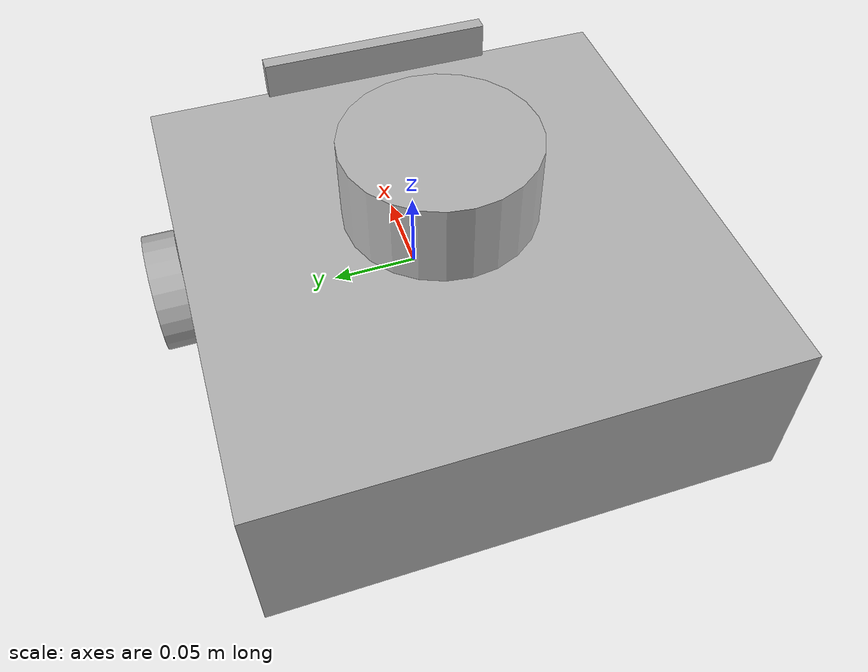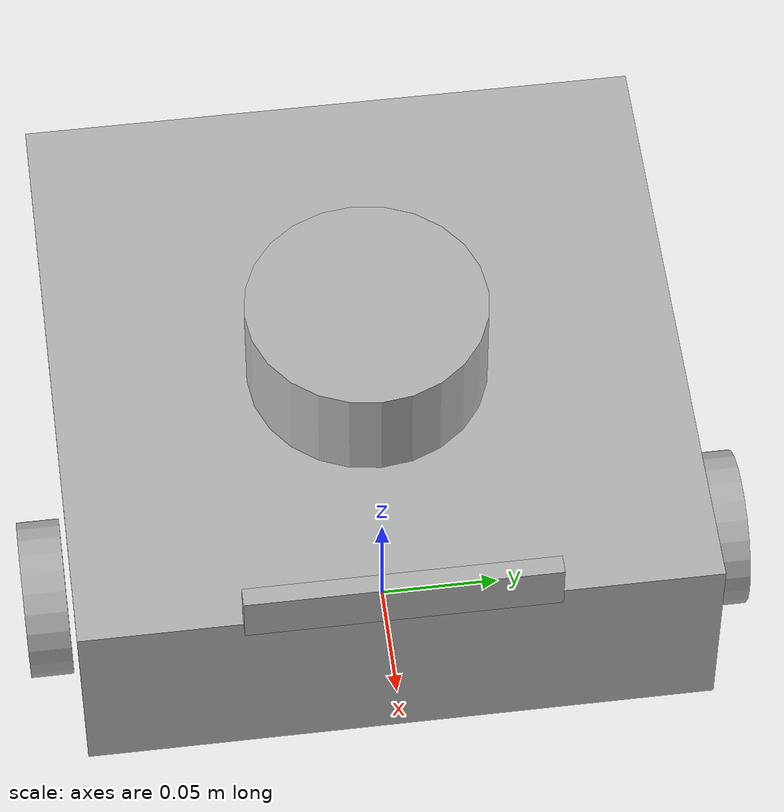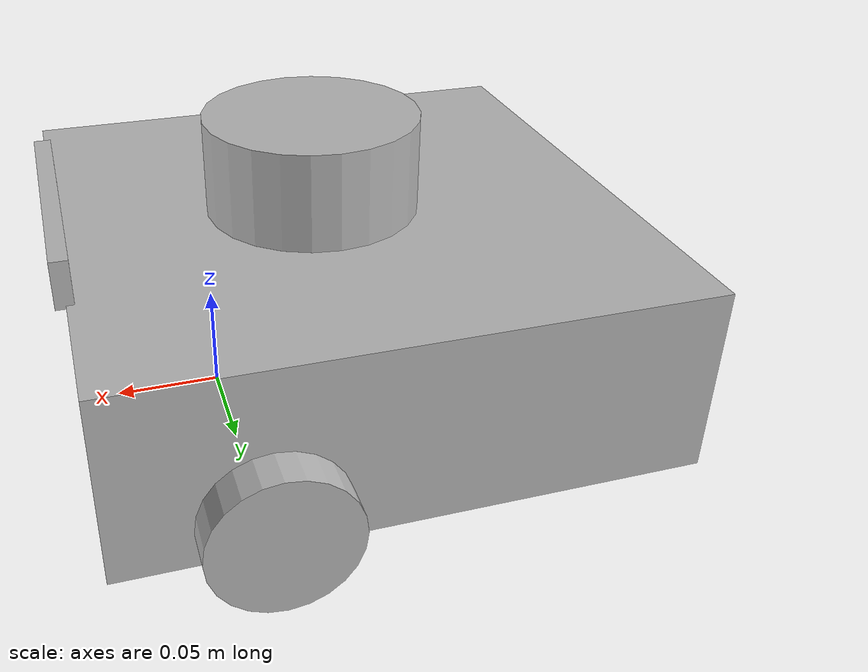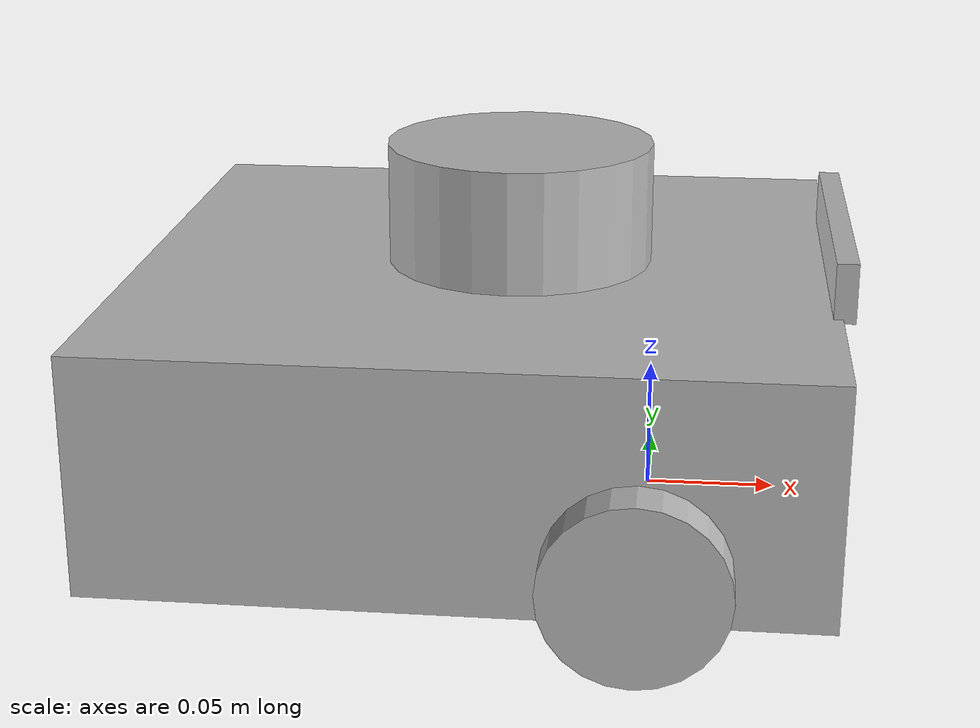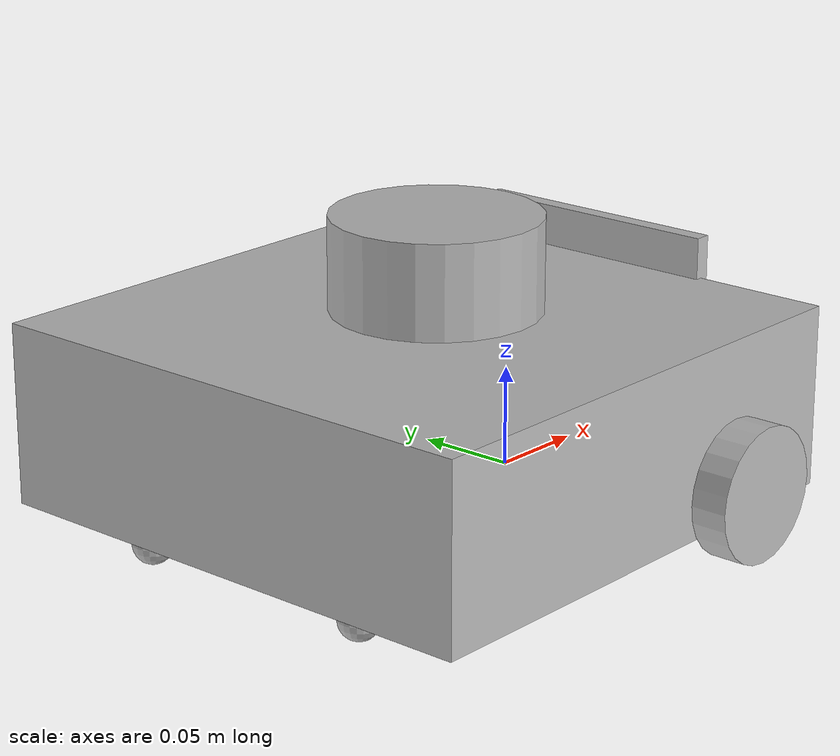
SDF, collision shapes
<?xml version="1.0"?>

<sdf version="1.6">
    <model name="turtlebot_waffle_gps">
      <pose>0.0 0.0 0.0 0.0 0.0 0.0</pose>

      <link name="base_footprint"/>

      <link name="base_link">

        <inertial>
          <pose>-0.064 0 0.048 0 0 0</pose>
          <inertia>
            <ixx>0.001</ixx>
            <ixy>0.000</ixy>
            <ixz>0.000</ixz>
            <iyy>0.001</iyy>
            <iyz>0.000</iyz>
            <izz>0.001</izz>
          </inertia>
          <mass>1.0</mass>
        </inertial>

        <collision name="base_collision">
          <pose>-0.064 0 0.048 0 0 0</pose>
          <geometry>
            <box>
              <size>0.265 0.265 0.089</size>
            </box>
          </geometry>
        </collision>

        <visual name="base_visual">
          <pose>-0.064 0 0 0 0 0</pose>
          <geometry>
            <mesh>
              <uri>model://turtlebot3_common/meshes/waffle_base.dae</uri>
              <scale>0.001 0.001 0.001</scale>
            </mesh>
          </geometry>
        </visual>
      </link>

      <link name="imu_link">
        <sensor name="tb3_imu" type="imu">
          <always_on>true</always_on>
          <update_rate>200</update_rate>
          <imu>
            <angular_velocity>
              <x>
                <noise type="gaussian">
                  <mean>0.0</mean>
                  <stddev>2e-4</stddev>
                </noise>
              </x>
              <y>
                <noise type="gaussian">
                  <mean>0.0</mean>
                  <stddev>2e-4</stddev>
                </noise>
              </y>
              <z>
                <noise type="gaussian">
                  <mean>0.0</mean>
                  <stddev>2e-4</stddev>
                </noise>
              </z>
            </angular_velocity>
            <linear_acceleration>
              <x>
                <noise type="gaussian">
                  <mean>0.0</mean>
                  <stddev>1.7e-2</stddev>
                </noise>
              </x>
              <y>
                <noise type="gaussian">
                  <mean>0.0</mean>
                  <stddev>1.7e-2</stddev>
                </noise>
              </y>
              <z>
                <noise type="gaussian">
                  <mean>0.0</mean>
                  <stddev>1.7e-2</stddev>
                </noise>
              </z>
            </linear_acceleration>
          </imu>
          <plugin name="gazebo_imu_plugin" filename="libgazebo_ros_imu_sensor.so">
            <initial_orientation_as_reference>false</initial_orientation_as_reference>
            <ros>
              <remapping>~/out:=imu</remapping>
              </ros>
          </plugin>
        </sensor>
      </link>

      <link name="gps_link">
      <!-- Some weird bug occurs if this joint gets the default inertia -->
        <inertial>
          <pose>-0.052 0 0.111 0 0 0</pose>
          <inertia>
            <mass>0.001</mass>
            <ixx>0.001</ixx>
            <ixy>0.000</ixy>
            <ixz>0.000</ixz>
            <iyy>0.001</iyy>
            <iyz>0.000</iyz>
            <izz>0.001</izz>
          </inertia>
          <mass>0.125</mass>
        </inertial>
        <sensor name="tb3_gps" type="gps">
          <always_on>true</always_on>
          <update_rate>1</update_rate>
          <pose>0 0 0 0 0 0</pose>
          <gps>
            <position_sensing>
              <horizontal>
                <noise type="gaussian">
                  <mean>0.0</mean>
                  <stddev>0.01</stddev>
                </noise>
              </horizontal>
              <vertical>
                <noise type="gaussian">
                  <mean>0.0</mean>
                  <stddev>0.01</stddev>
                </noise>
              </vertical>
            </position_sensing>
          </gps>
          <plugin name="gazebo_gnss_plugin" filename="libgazebo_ros_gps_sensor.so">
            <ros>
              <remapping>~/out:=/gps/fix</remapping>
            </ros>
          </plugin>
        </sensor>
      </link>

      <link name="base_scan">
        <inertial>
          <pose>-0.064 0 0.121 0 0 0</pose>
          <inertia>
            <ixx>0.001</ixx>
            <ixy>0.000</ixy>
            <ixz>0.000</ixz>
            <iyy>0.001</iyy>
            <iyz>0.000</iyz>
            <izz>0.001</izz>
          </inertia>
          <mass>0.125</mass>
        </inertial>

        <collision name="lidar_sensor_collision">
          <pose>-0.052 0 0.111 0 0 0</pose>
          <geometry>
            <cylinder>
              <radius>0.0508</radius>
              <length>0.055</length>
            </cylinder>
          </geometry>
        </collision>

        <visual name="lidar_sensor_visual">
          <pose>-0.064 0 0.121 0 0 0</pose>
          <geometry>
            <mesh>
              <uri>model://turtlebot3_common/meshes/lds.dae</uri>
              <scale>0.001 0.001 0.001</scale>
            </mesh>
          </geometry>
        </visual>

        <sensor name="hls_lfcd_lds" type="ray">
          <always_on>true</always_on>
          <visualize>true</visualize>
          <pose>-0.064 0 0.15 0 0 0</pose>
          <update_rate>10</update_rate>
          <ray>
            <scan>
              <horizontal>
                <samples>360</samples>
                <resolution>1.000</resolution>
                <min_angle>0.000</min_angle>
                <max_angle>6.280</max_angle>
              </horizontal>
            </scan>
            <range>
              <min>0.010</min>
              <max>5.0</max>
              <resolution>0.015</resolution>
            </range>
            <noise>
              <type>gaussian</type>
              <mean>0.0</mean>
              <stddev>0.01</stddev>
            </noise>
          </ray>
          <plugin name="gazebo_laserscan_plugin" filename="libgazebo_ros_ray_sensor.so">
            <ros>
                <remapping>~/out:=scan</remapping>
            </ros>
            <output_type>sensor_msgs/LaserScan</output_type>
            <frame_name>base_scan</frame_name>
          </plugin>
        </sensor>
      </link>

      <link name="wheel_left_link">
        <inertial>
          <pose>0.0 0.144 0.023 -1.57 0 0</pose>
          <inertia>
            <ixx>0.001</ixx>
            <ixy>0.000</ixy>
            <ixz>0.000</ixz>
            <iyy>0.001</iyy>
            <iyz>0.000</iyz>
            <izz>0.001</izz>
          </inertia>
          <mass>0.1</mass>
        </inertial>

        <collision name="wheel_left_collision">
          <pose>0.0 0.144 0.023 -1.57 0 0</pose>
          <geometry>
            <cylinder>
              <radius>0.033</radius>
              <length>0.018</length>
            </cylinder>
          </geometry>
          <surface>
            <!-- This friction parameter doesn't contain reliable data!! -->
            <friction>
              <ode>
                <mu>100000.0</mu>
                <mu2>100000.0</mu2>
                <fdir1>0 0 0</fdir1>
                <slip1>0.0</slip1>
                <slip2>0.0</slip2>
              </ode>
            </friction>
            <contact>
              <ode>
                <soft_cfm>0</soft_cfm>
                <soft_erp>0.2</soft_erp>
                <kp>1e+5</kp>
                <kd>1</kd>
                <max_vel>0.01</max_vel>
                <min_depth>0.001</min_depth>
              </ode>
            </contact>
          </surface>
        </collision>

        <visual name="wheel_left_visual">
          <pose>0.0 0.144 0.023 0 0 0</pose>
          <geometry>
            <mesh>
              <uri>model://turtlebot3_common/meshes/tire.dae</uri>
              <scale>0.001 0.001 0.001</scale>
            </mesh>
          </geometry>
        </visual>
      </link>

      <link name="wheel_right_link">
        <inertial>
          <pose>0.0 -0.144 0.023 -1.57 0 0</pose>
          <inertia>
            <ixx>0.001</ixx>
            <ixy>0.000</ixy>
            <ixz>0.000</ixz>
            <iyy>0.001</iyy>
            <iyz>0.000</iyz>
            <izz>0.001</izz>
          </inertia>
          <mass>0.1</mass>
        </inertial>

        <collision name="wheel_right_collision">
          <pose>0.0 -0.144 0.023 -1.57 0 0</pose>
          <geometry>
            <cylinder>
              <radius>0.033</radius>
              <length>0.018</length>
            </cylinder>
          </geometry>
          <surface>
            <!-- This friction parameter doesn't contain reliable data!! -->
            <friction>
              <ode>
                <mu>100000.0</mu>
                <mu2>100000.0</mu2>
                <fdir1>0 0 0</fdir1>
                <slip1>0.0</slip1>
                <slip2>0.0</slip2>
              </ode>
            </friction>
            <contact>
              <ode>
                <soft_cfm>0</soft_cfm>
                <soft_erp>0.2</soft_erp>
                <kp>1e+5</kp>
                <kd>1</kd>
                <max_vel>0.01</max_vel>
                <min_depth>0.001</min_depth>
              </ode>
            </contact>
          </surface>
        </collision>

        <visual name="wheel_right_visual">
          <pose>0.0 -0.144 0.023 0 0 0</pose>
          <geometry>
            <mesh>
              <uri>model://turtlebot3_common/meshes/tire.dae</uri>
              <scale>0.001 0.001 0.001</scale>
            </mesh>
          </geometry>
        </visual>
      </link>

      <link name='caster_back_right_link'>
        <pose>-0.177 -0.064 -0.004 0 0 0</pose>
        <inertial>
          <mass>0.001</mass>
          <inertia>
            <ixx>0.00001</ixx>
            <ixy>0.000</ixy>
            <ixz>0.000</ixz>
            <iyy>0.00001</iyy>
            <iyz>0.000</iyz>
            <izz>0.00001</izz>
          </inertia>
        </inertial>
        <collision name='caster_back_right_collision'>
          <geometry>
            <sphere>
              <radius>0.010</radius>
            </sphere>
          </geometry>
        </collision>
        <visual name="caster_back_right_visual">
          <geometry>
            <sphere>
              <radius>0.010</radius>
            </sphere>
          </geometry>
        </visual>
      </link>

      <link name='caster_back_left_link'>
        <pose>-0.177 0.064 -0.004 0 0 0</pose>
        <inertial>
          <mass>0.001</mass>
          <inertia>
            <ixx>0.00001</ixx>
            <ixy>0.000</ixy>
            <ixz>0.000</ixz>
            <iyy>0.00001</iyy>
            <iyz>0.000</iyz>
            <izz>0.00001</izz>
          </inertia>
        </inertial>
        <collision name='caster_back_left_collision'>
          <geometry>
            <sphere>
              <radius>0.010</radius>
            </sphere>
          </geometry>
        </collision>
        <visual name="caster_back_left_visual">
          <geometry>
            <sphere>
              <radius>0.010</radius>
            </sphere>
          </geometry>
        </visual>
      </link>

      <link name="camera_link">
        <inertial>
          <pose>0.069 -0.047 0.107 0 0 0</pose>
          <inertia>
            <ixx>0.001</ixx>
            <ixy>0.000</ixy>
            <ixz>0.000</ixz>
            <iyy>0.001</iyy>
            <iyz>0.000</iyz>
            <izz>0.001</izz>
          </inertia>
          <mass>0.035</mass>
        </inertial>
        <collision name="collision">
          <pose>0 0.047 -0.005 0 0 0</pose>
          <geometry>
            <box>
              <size>0.008 0.130 0.022</size>
            </box>
          </geometry>
        </collision>

        <pose>0.069 -0.047 0.107 0 0 0</pose>

      </link>

      <joint name="base_joint" type="fixed">
        <parent>base_footprint</parent>
        <child>base_link</child>
        <pose>0.0 0.0 0.010 0 0 0</pose>
      </joint>

      <joint name="imu_joint" type="fixed">
        <parent>base_link</parent>
        <child>imu_link</child>
        <pose>-0.032 0 0.068 0 0 0</pose>
        <axis>
          <xyz>0 0 1</xyz>
        </axis>
      </joint>

      <joint name="gps_joint" type="fixed">
        <parent>base_link</parent>
        <child>gps_link</child>
        <pose>-0.05 0 0.05 0 0 0</pose>
        <axis>
          <xyz>0 0 1</xyz>
        </axis>
      </joint>

      <joint name="wheel_left_joint" type="revolute">
        <parent>base_link</parent>
        <child>wheel_left_link</child>
        <pose>0.0 0.144 0.023 -1.57 0 0</pose>
        <axis>
          <xyz>0 0 1</xyz>
        </axis>
      </joint>

      <joint name="wheel_right_joint" type="revolute">
        <parent>base_link</parent>
        <child>wheel_right_link</child>
        <pose>0.0 -0.144 0.023 -1.57 0 0</pose>
        <axis>
          <xyz>0 0 1</xyz>
        </axis>
      </joint>

      <joint name='caster_back_right_joint' type='ball'>
        <parent>base_link</parent>
        <child>caster_back_right_link</child>
      </joint>

      <joint name='caster_back_left_joint' type='ball'>
        <parent>base_link</parent>
        <child>caster_back_left_link</child>
      </joint>

      <joint name="lidar_joint" type="fixed">
        <parent>base_link</parent>
        <child>base_scan</child>
        <pose>-0.064 0 0.121 0 0 0</pose>
        <axis>
          <xyz>0 0 1</xyz>
        </axis>
      </joint>

      <joint name="camera_joint" type="fixed">
        <parent>base_link</parent>
        <child>camera_link</child>
        <pose>0.064 -0.065 0.094 0 0 0</pose>
        <axis>
          <xyz>0 0 1</xyz>
        </axis>
      </joint>

      <plugin name="gazebo_diff_drive_plugin" filename="libgazebo_ros_diff_drive.so">

        <ros>
          <!-- since gazebo_plugins only publishes the tf topic in the global namespace /tf
           and it cannot be remapped like (namespace/tf) through launch arguments -->
          <remapping>/tf:=tf</remapping>
        </ros>

        <update_rate>30</update_rate>

        <!-- wheels -->
        <left_joint>wheel_left_joint</left_joint>
        <right_joint>wheel_right_joint</right_joint>

        <!-- kinematics -->
        <wheel_separation>0.287</wheel_separation>
        <wheel_diameter>0.066</wheel_diameter>

        <!-- limits -->
        <max_wheel_torque>20</max_wheel_torque>
        <max_wheel_acceleration>1.0</max_wheel_acceleration>

        <command_topic>cmd_vel</command_topic>

        <!-- output -->
        <!-- The odom -> base link transform is published by the ekf in robot localization -->
        <publish_odom>true</publish_odom>
        <publish_odom_tf>true</publish_odom_tf>
        <publish_wheel_tf>false</publish_wheel_tf>

        <odometry_topic>odom</odometry_topic>
        <odometry_frame>odom</odometry_frame>
        <robot_base_frame>base_footprint</robot_base_frame>

      </plugin>

      <plugin name="gazebo_joint_state_plugin" filename="libgazebo_ros_joint_state_publisher.so">
        <ros>
            <remapping>~/out:=joint_states</remapping>
        </ros>
        <update_rate>30</update_rate>
        <joint_name>wheel_left_joint</joint_name>
        <joint_name>wheel_right_joint</joint_name>
      </plugin>

    </model>
</sdf>
